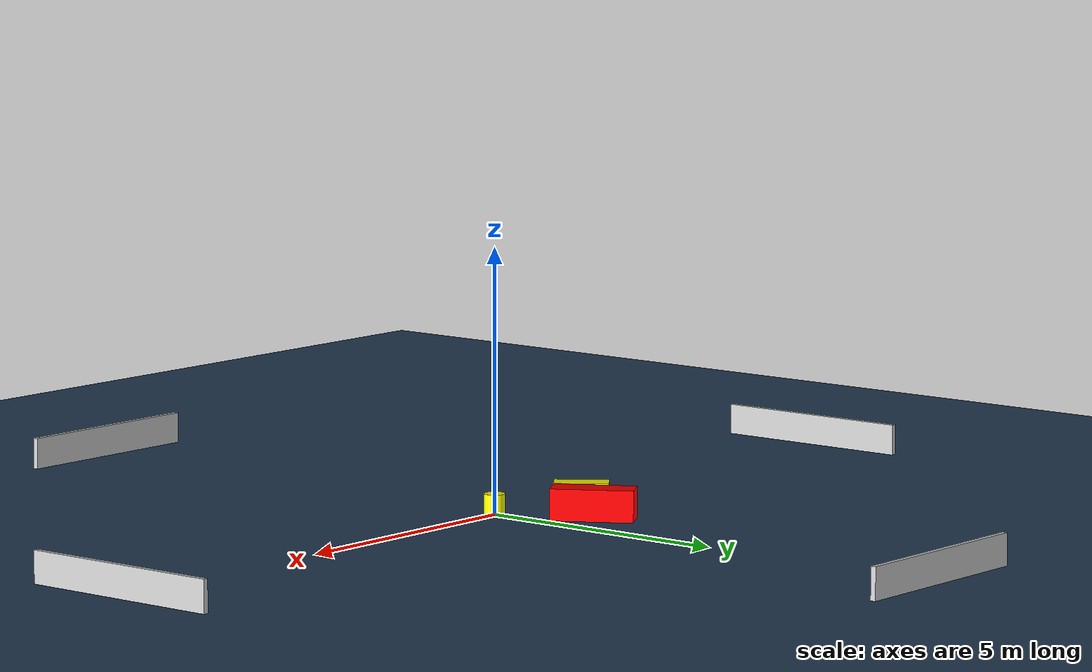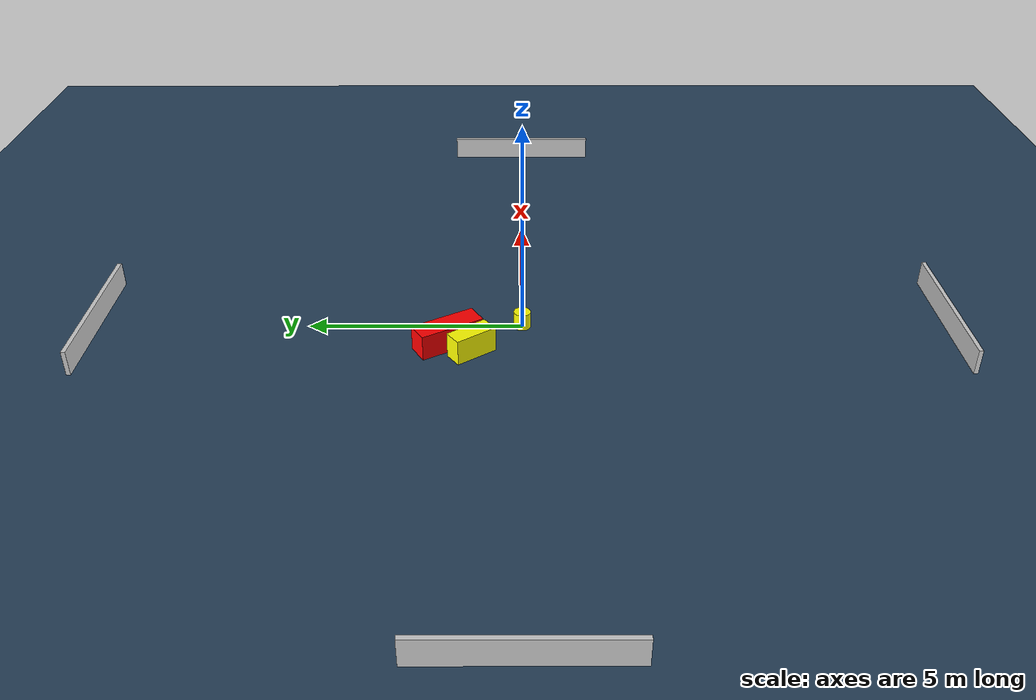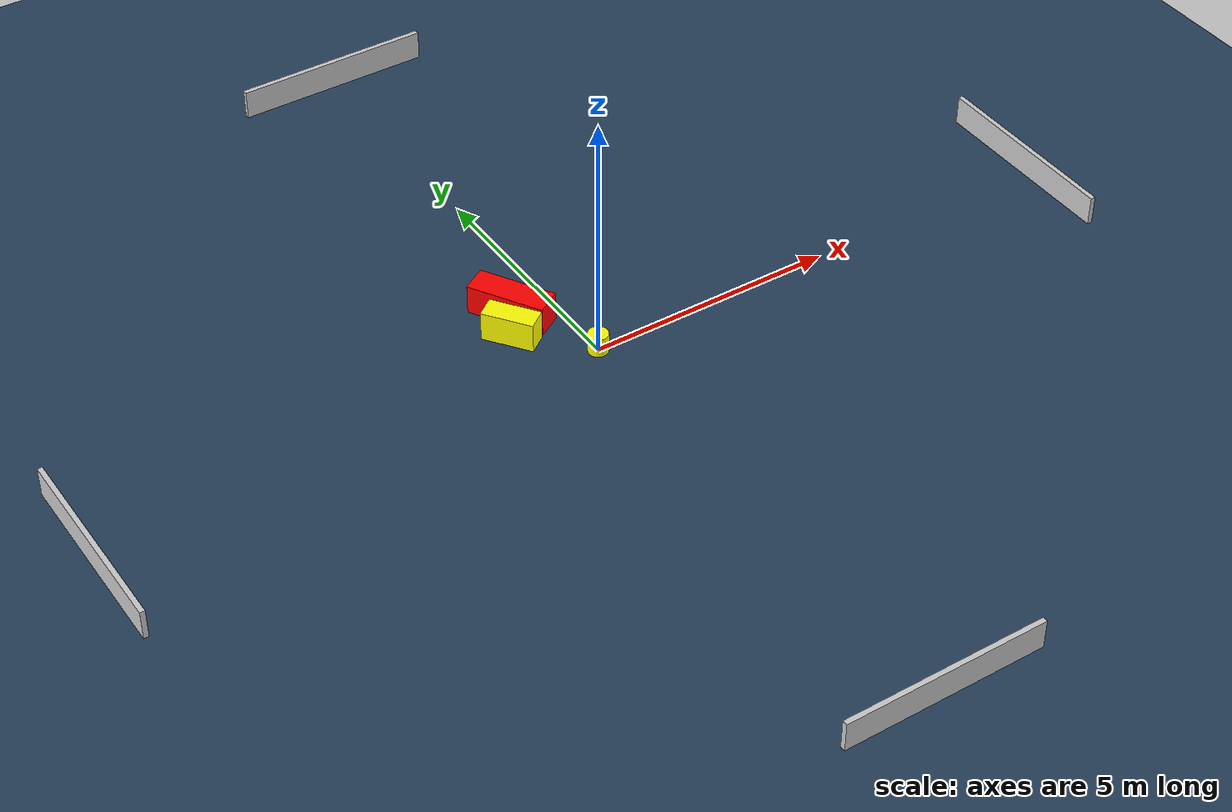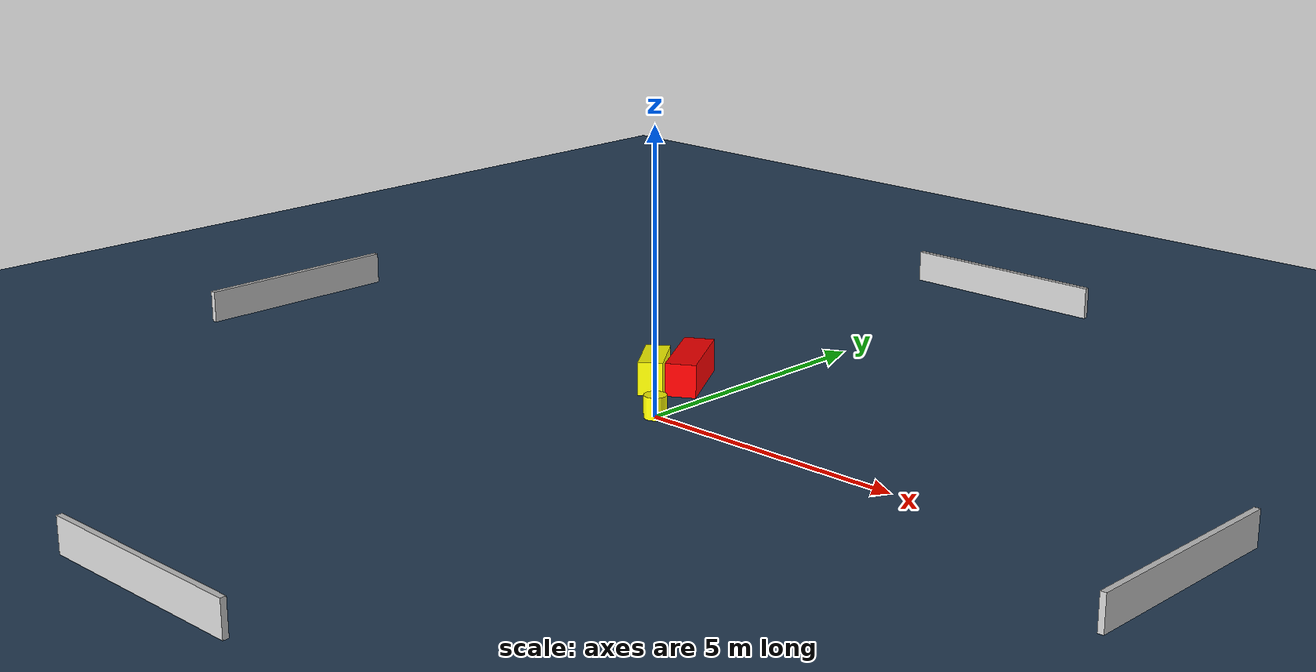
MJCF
<?xml version="1.0" ?>
<mujoco model="generated_environment">
  <option timestep="0.01" integrator="RK4" cone="elliptic"/>
  <default>
    <geom density="1"/>
  </default>
  <asset>
    <texture builtin="gradient" height="3072" name="skybox" rgb1="0.3 0.5 0.7" rgb2="0 0 0" type="skybox" width="512"/>
    <texture builtin="checker" height="300" name="groundplane" rgb1="0.2 0.3 0.4" rgb2="0.1 0.2 0.3" type="2d" width="300"/>
    <material name="groundplane" reflectance="0.2" texrepeat="5 5" texture="groundplane"/>
  </asset>
  <worldbody>
    <light dir="0 0 -1" directional="true" pos="0 0 1.5"/>
    <geom condim="3" friction="0.5 0.005 0.001" material="groundplane" name="floor" pos="0 0 0" size="0 0 0.05" type="plane"/>
    <body name="walls">
      <geom name="wall_1" condim="4" pos="-10.0 0.0 0.3" rgba="0.800000011920929 0.800000011920929 0.800000011920929 1.0" size="0.05 2.0 0.3" type="box"/>
      <geom name="wall_2" condim="4" pos="10.0 0.0 0.3" rgba="0.800000011920929 0.800000011920929 0.800000011920929 1.0" size="0.05 2.0 0.3" type="box"/>
      <geom name="wall_3" condim="4" pos="0.0 -10.0 0.3" rgba="0.800000011920929 0.800000011920929 0.800000011920929 1.0" size="2.0 0.05 0.3" type="box"/>
      <geom name="wall_4" condim="4" pos="0.0 10.0 0.3" rgba="0.800000011920929 0.800000011920929 0.800000011920929 1.0" size="2.0 0.05 0.3" type="box"/>
    </body>
    <body name="robot">
      <joint name="joint_x" type="slide" pos="0 0 0" axis="1 0 0"/>
      <joint name="joint_y" type="slide" pos="0 0 0" axis="0 1 0"/>
      <geom name="robot" type="cylinder" pos="0.0 0.0 0.2" size="0.2 0.2 0.0" mass="5.0" friction="1.0 0.005 0.0001" condim="4" rgba="1.0 1.0 0.0 1.0"/>
    </body>
    <body name="obstacle_1_movable">
      <geom name="obstacle_1_movable" condim="4" pos="-1.1397021274020132 1.1500026723899965 0.3" euler="0 0 306.2679175929667" friction="0.0 0.005 0.001" rgba="1.0 1.0 0.0 1.0" size="0.5150320397894115 0.2205262992801581 0.3" type="box" mass="0.1"/>
      <joint type="free"/>
    </body>
    <body name="obstacle_2_static">
      <geom name="obstacle_2_static" condim="4" pos="-0.7983378927393119 1.7045988094539004 0.3" euler="0 0 120.90870164928184" friction="0.0 0.005 0.001" rgba="1.0 0.0 0.0 1.0" size="0.7790962218340585 0.27332645548183915 0.3" type="box"/>
    </body>
  </worldbody>
  <actuator>
    <motor name="actuator_x" joint="joint_x" gear="1" ctrlrange="-1 1"/>
    <motor name="actuator_y" joint="joint_y" gear="1" ctrlrange="-1 1"/>
  </actuator>
</mujoco>
